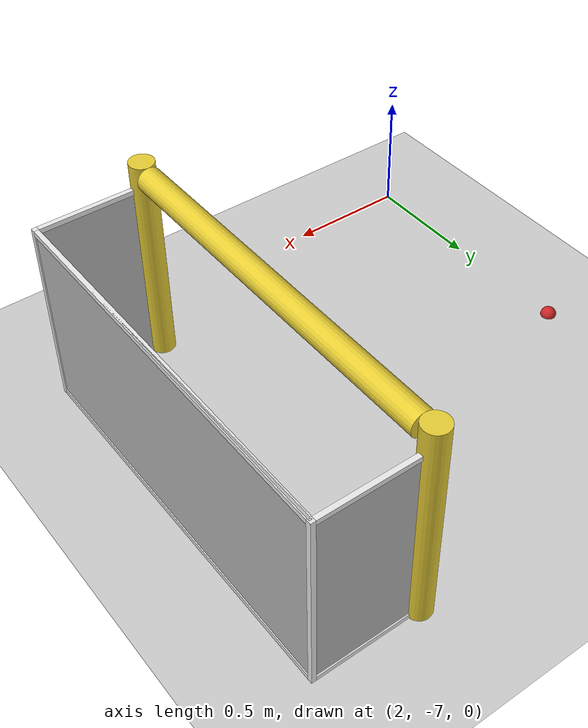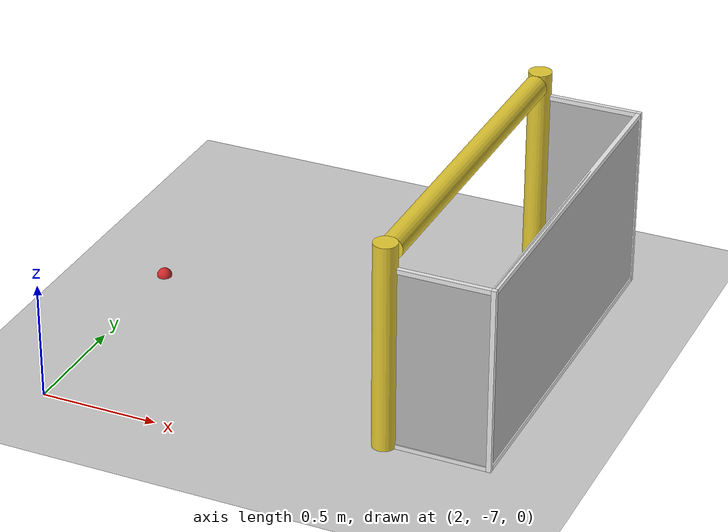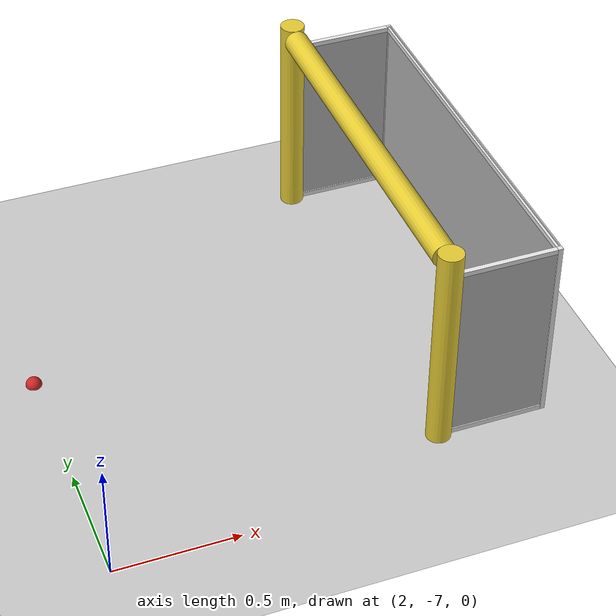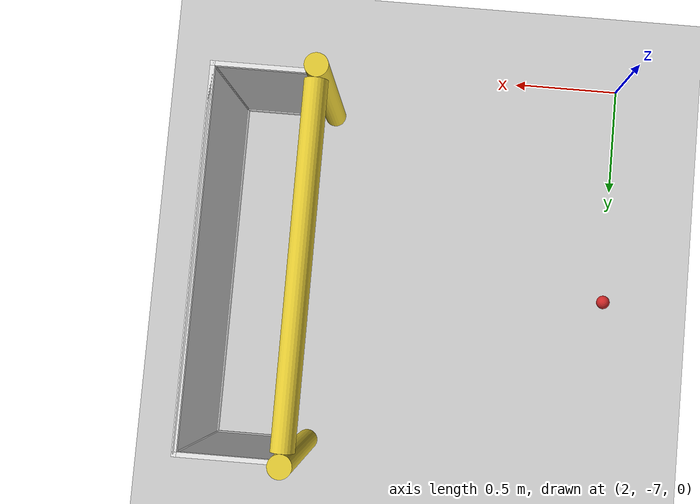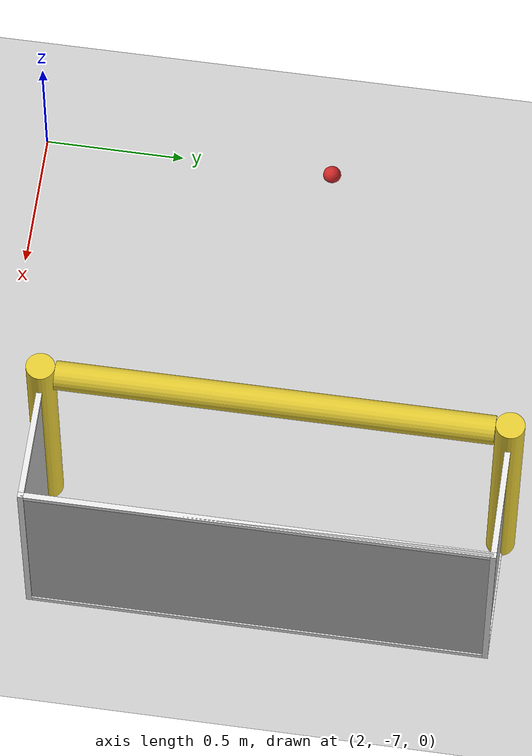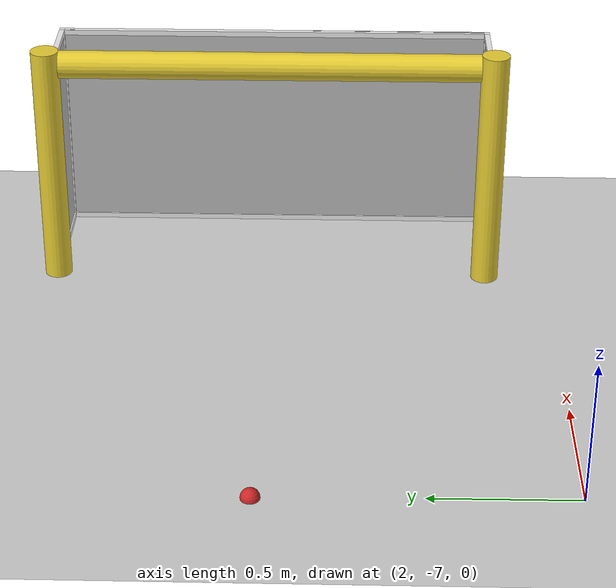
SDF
<sdf version="1.6">
 <world name="default">
  <model name="ground_plane">
   <static>1</static>
   <link name="link">
    <collision name="collision">
     <geometry><plane><normal>0 0 1</normal><size>100 100</size></plane></geometry>
     <surface><friction><ode><mu>100</mu><mu2>50</mu2></ode></friction></surface>
    </collision>
    <visual name="visual">
     <cast_shadows>0</cast_shadows>
     <geometry><plane><normal>0 0 1</normal><size>100 100</size></plane></geometry>
     <material>
      <script><uri>file://media/materials/scripts/gazebo.material</uri><name>Gazebo/Grey</name></script>
     </material>
    </visual>
   </link>
  </model>
  <model name="RoboCup 2014 SPL Goal">
   <static>1</static>
   <link name="left_post">
    <pose>0 0.8 0.45 0 -0 0</pose>
    <collision name="collision">
     <geometry><cylinder><radius>0.05</radius><length>0.9</length></cylinder></geometry>
    </collision>
    <visual name="visual">
     <geometry><cylinder><radius>0.05</radius><length>0.9</length></cylinder></geometry>
     <material>
      <script><uri>file://media/materials/scripts/gazebo.material</uri><name>Gazebo/ZincYellow</name></script>
     </material>
    </visual>
   </link>
   <link name="left_support_horiz_lower">
    <pose>0.24 0.8 0.01 0 -0 0</pose>
    <collision name="collision"><geometry><box><size>0.38 0.02 0.02</size></box></geometry></collision>
    <visual name="visual">
     <geometry><box><size>0.38 0.02 0.02</size></box></geometry>
     <material>
      <script><uri>file://media/materials/scripts/gazebo.material</uri><name>Gazebo/White</name></script>
     </material>
    </visual>
   </link>
   <link name="left_support_horiz_upper">
    <pose>0.24 0.8 0.79 0 -0 0</pose>
    <collision name="collision"><geometry><box><size>0.38 0.02 0.02</size></box></geometry></collision>
    <visual name="visual">
     <geometry><box><size>0.38 0.02 0.02</size></box></geometry>
     <material>
      <script><uri>file://media/materials/scripts/gazebo.material</uri><name>Gazebo/White</name></script>
     </material>
    </visual>
   </link>
   <link name="left_support_vertical">
    <pose>0.44 0.8 0.4 3.14159 1.57079 3.14159</pose>
    <collision name="collision"><geometry><box><size>0.8 0.02 0.02</size></box></geometry></collision>
    <visual name="visual">
     <geometry><box><size>0.8 0.02 0.02</size></box></geometry>
     <material>
      <script><uri>file://media/materials/scripts/gazebo.material</uri><name>Gazebo/White</name></script>
     </material>
    </visual>
   </link>
   <link name="right_support_horiz_lower">
    <pose>0.24 -0.8 0.01 0 -0 0</pose>
    <collision name="collision"><geometry><box><size>0.38 0.02 0.02</size></box></geometry></collision>
    <visual name="visual">
     <geometry><box><size>0.38 0.02 0.02</size></box></geometry>
     <material>
      <script><uri>file://media/materials/scripts/gazebo.material</uri><name>Gazebo/White</name></script>
     </material>
    </visual>
   </link>
   <link name="right_support_horiz_upper">
    <pose>0.24 -0.8 0.79 0 -0 0</pose>
    <collision name="collision"><geometry><box><size>0.38 0.02 0.02</size></box></geometry></collision>
    <visual name="visual">
     <geometry><box><size>0.38 0.02 0.02</size></box></geometry>
     <material>
      <script><uri>file://media/materials/scripts/gazebo.material</uri><name>Gazebo/White</name></script>
     </material>
    </visual>
   </link>
   <link name="right_support_vertical">
    <pose>0.44 -0.8 0.4 3.14159 1.57079 3.14159</pose>
    <collision name="collision"><geometry><box><size>0.8 0.02 0.02</size></box></geometry></collision>
    <visual name="visual">
     <geometry><box><size>0.8 0.02 0.02</size></box></geometry>
     <material>
      <script><uri>file://media/materials/scripts/gazebo.material</uri><name>Gazebo/White</name></script>
     </material>
    </visual>
   </link>
   <link name="center_support_horiz_lower">
    <pose>0.44 0 0.01 3.14159 1.57079 3.14159</pose>
    <collision name="collision"><geometry><box><size>0.02 1.58 0.02</size></box></geometry></collision>
    <visual name="visual">
     <geometry><box><size>0.02 1.58 0.02</size></box></geometry>
     <material>
      <script><uri>file://media/materials/scripts/gazebo.material</uri><name>Gazebo/White</name></script>
     </material>
    </visual>
   </link>
   <link name="center_support_horiz_upper">
    <pose>0.44 0 0.79 3.14159 1.57079 3.14159</pose>
    <collision name="collision"><geometry><box><size>0.02 1.58 0.02</size></box></geometry></collision>
    <visual name="visual">
     <geometry><box><size>0.02 1.58 0.02</size></box></geometry>
     <material>
      <script><uri>file://media/materials/scripts/gazebo.material</uri><name>Gazebo/White</name></script>
     </material>
    </visual>
   </link>
   <link name="right_post">
    <pose>0 -0.8 0.45 0 -0 0</pose>
    <collision name="collision">
     <geometry><cylinder><radius>0.05</radius><length>0.9</length></cylinder></geometry>
    </collision>
    <visual name="visual">
     <geometry><cylinder><radius>0.05</radius><length>0.9</length></cylinder></geometry>
     <material>
      <script><uri>file://media/materials/scripts/gazebo.material</uri><name>Gazebo/ZincYellow</name></script>
     </material>
    </visual>
   </link>
   <link name="crossbar">
    <pose>0 0 0.85 1.57 1.57 0</pose>
    <collision name="collision">
     <geometry><cylinder><radius>0.05</radius><length>1.5</length></cylinder></geometry>
    </collision>
    <visual name="visual">
     <geometry><cylinder><radius>0.05</radius><length>1.5</length></cylinder></geometry>
     <material>
      <script><uri>file://media/materials/scripts/gazebo.material</uri><name>Gazebo/ZincYellow</name></script>
     </material>
    </visual>
   </link>
   <link name="center_net">
    <pose>0.44 0 0.4 0 -0 0</pose>
    <collision name="collision"><geometry><box><size>0.01 1.6 0.8</size></box></geometry></collision>
    <visual name="visual">
     <geometry><box><size>0.01 1.6 0.8</size></box></geometry>
     <material>
      <script>
       <uri>model://robocup09_spl_field/materials/scripts/</uri>
       <uri>model://robocup09_spl_field/materials/textures/</uri>
       <name>RoboCup/Net</name>
      </script>
     </material>
    </visual>
   </link>
   <link name="left_net">
    <pose>0.24 0.8 0.4 0 -0 0</pose>
    <collision name="collision"><geometry><box><size>0.38 0.01 0.76</size></box></geometry></collision>
    <visual name="visual">
     <geometry><box><size>0.38 0.01 0.76</size></box></geometry>
     <material>
      <script>
       <uri>model://robocup09_spl_field/materials/scripts/</uri>
       <uri>model://robocup09_spl_field/materials/textures/</uri>
       <name>RoboCup/Net</name>
      </script>
     </material>
    </visual>
   </link>
   <link name="right_net">
    <pose>0.24 -0.8 0.4 0 -0 0</pose>
    <collision name="collision"><geometry><box><size>0.38 0.01 0.76</size></box></geometry></collision>
    <visual name="visual">
     <geometry><box><size>0.38 0.01 0.76</size></box></geometry>
     <material>
      <script>
       <uri>model://robocup09_spl_field/materials/scripts/</uri>
       <uri>model://robocup09_spl_field/materials/textures/</uri>
       <name>RoboCup/Net</name>
      </script>
     </material>
    </visual>
   </link>
   <pose>3.38117 -5.97003 0 0 -0 0</pose>
  </model>
  <model name="RoboCup SPL Ball">
   <static>0</static>
   <link name="ball">
    <inertial>
     <mass>0.0056</mass>
     <inertia>
      <ixx>2.37e-06</ixx>
      <iyy>2.37e-06</iyy>
      <izz>2.37e-06</izz>
      <ixy>0</ixy>
      <ixz>0</ixz>
      <iyz>0</iyz>
     </inertia>
    </inertial>
    <collision name="collision"><geometry><sphere><radius>0.0325</radius></sphere></geometry></collision>
    <visual name="visual">
     <geometry><sphere><radius>0.0325</radius></sphere></geometry>
     <material>
      <script><uri>file://media/materials/scripts/gazebo.material</uri><name>Gazebo/RedBright</name></script>
     </material>
    </visual>
   </link>
   <pose>1.99236 -5.95422 0 0 -0 0</pose>
  </model>
 </world>
</sdf>
